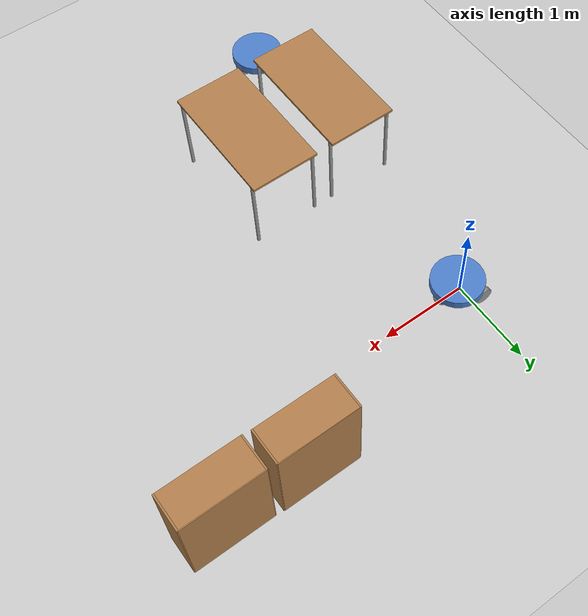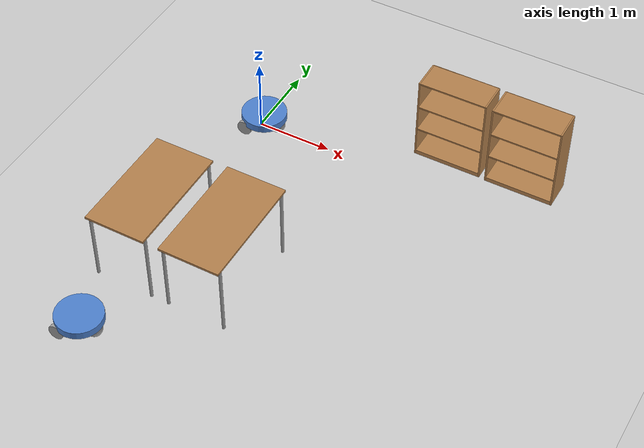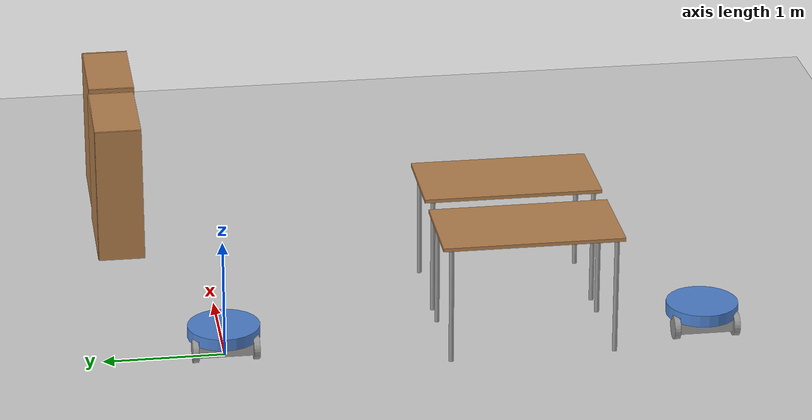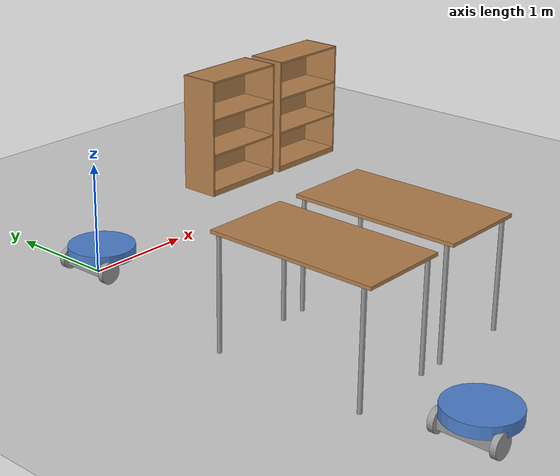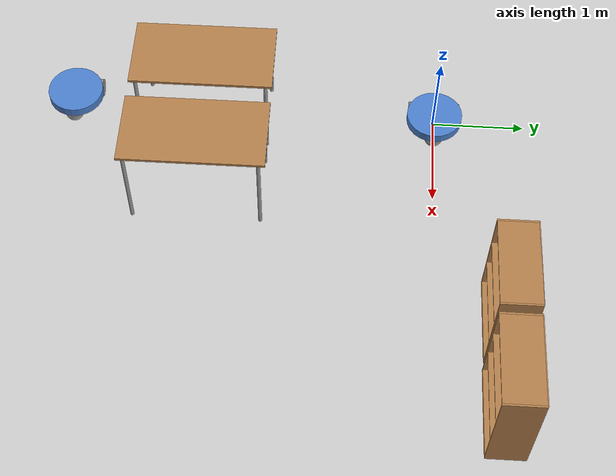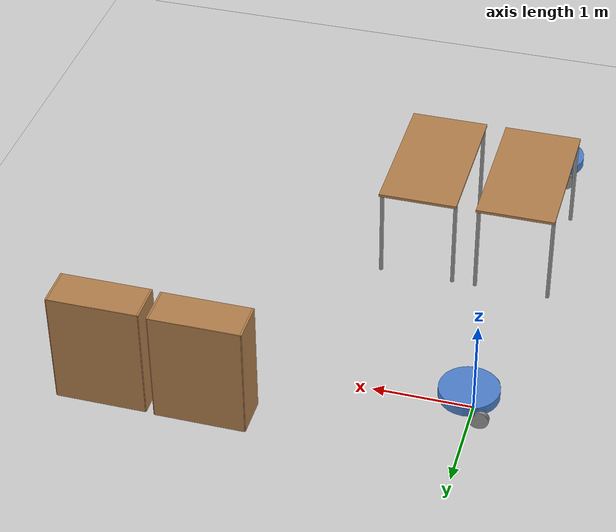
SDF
<sdf version="1.6">
 <world name="default">
  <model name="ground_plane">
   <static>1</static>
   <link name="link">
    <collision name="collision">
     <geometry><plane><normal>0 0 1</normal><size>100 100</size></plane></geometry>
     <surface>
      <contact><collide_bitmask>65535</collide_bitmask></contact>
      <friction><ode><mu>100</mu><mu2>50</mu2></ode></friction>
     </surface>
    </collision>
    <visual name="visual">
     <cast_shadows>0</cast_shadows>
     <geometry><plane><normal>0 0 1</normal><size>100 100</size></plane></geometry>
     <material>
      <script><uri>file://media/materials/scripts/gazebo.material</uri><name>Gazebo/Grey</name></script>
     </material>
    </visual>
   </link>
  </model>
  <model name="table_clone_0">
   <static>1</static>
   <link name="link">
    <collision name="surface">
     <pose>0 0 1 0 -0 0</pose>
     <geometry><box><size>1.5 0.8 0.03</size></box></geometry>
     <surface><friction><ode><mu>0.6</mu><mu2>0.6</mu2></ode></friction></surface>
    </collision>
    <visual name="visual1">
     <pose>0 0 1 0 -0 0</pose>
     <geometry><box><size>1.5 0.8 0.03</size></box></geometry>
     <material>
      <script><uri>file://media/materials/scripts/gazebo.material</uri><name>Gazebo/Wood</name></script>
     </material>
    </visual>
    <collision name="front_left_leg">
     <pose>0.68 0.38 0.5 0 -0 0</pose>
     <geometry><cylinder><radius>0.02</radius><length>1</length></cylinder></geometry>
    </collision>
    <visual name="front_left_leg">
     <pose>0.68 0.38 0.5 0 -0 0</pose>
     <geometry><cylinder><radius>0.02</radius><length>1</length></cylinder></geometry>
     <material>
      <script><uri>file://media/materials/scripts/gazebo.material</uri><name>Gazebo/Grey</name></script>
     </material>
    </visual>
    <collision name="front_right_leg">
     <pose>0.68 -0.38 0.5 0 -0 0</pose>
     <geometry><cylinder><radius>0.02</radius><length>1</length></cylinder></geometry>
    </collision>
    <visual name="front_right_leg">
     <pose>0.68 -0.38 0.5 0 -0 0</pose>
     <geometry><cylinder><radius>0.02</radius><length>1</length></cylinder></geometry>
     <material>
      <script><uri>file://media/materials/scripts/gazebo.material</uri><name>Gazebo/Grey</name></script>
     </material>
    </visual>
    <collision name="back_right_leg">
     <pose>-0.68 -0.38 0.5 0 -0 0</pose>
     <geometry><cylinder><radius>0.02</radius><length>1</length></cylinder></geometry>
    </collision>
    <visual name="back_right_leg">
     <pose>-0.68 -0.38 0.5 0 -0 0</pose>
     <geometry><cylinder><radius>0.02</radius><length>1</length></cylinder></geometry>
     <material>
      <script><uri>file://media/materials/scripts/gazebo.material</uri><name>Gazebo/Grey</name></script>
     </material>
    </visual>
    <collision name="back_left_leg">
     <pose>-0.68 0.38 0.5 0 -0 0</pose>
     <geometry><cylinder><radius>0.02</radius><length>1</length></cylinder></geometry>
    </collision>
    <visual name="back_left_leg">
     <pose>-0.68 0.38 0.5 0 -0 0</pose>
     <geometry><cylinder><radius>0.02</radius><length>1</length></cylinder></geometry>
     <material>
      <script><uri>file://media/materials/scripts/gazebo.material</uri><name>Gazebo/Grey</name></script>
     </material>
    </visual>
   </link>
   <pose>0 -2.5 0 0 -0 1.5708</pose>
  </model>
  <model name="table_clone_1">
   <static>1</static>
   <link name="link">
    <collision name="surface">
     <pose>0 0 1 0 -0 0</pose>
     <geometry><box><size>1.5 0.8 0.03</size></box></geometry>
     <surface><friction><ode><mu>0.6</mu><mu2>0.6</mu2></ode></friction></surface>
    </collision>
    <visual name="visual1">
     <pose>0 0 1 0 -0 0</pose>
     <geometry><box><size>1.5 0.8 0.03</size></box></geometry>
     <material>
      <script><uri>file://media/materials/scripts/gazebo.material</uri><name>Gazebo/Wood</name></script>
     </material>
    </visual>
    <collision name="front_left_leg">
     <pose>0.68 0.38 0.5 0 -0 0</pose>
     <geometry><cylinder><radius>0.02</radius><length>1</length></cylinder></geometry>
    </collision>
    <visual name="front_left_leg">
     <pose>0.68 0.38 0.5 0 -0 0</pose>
     <geometry><cylinder><radius>0.02</radius><length>1</length></cylinder></geometry>
     <material>
      <script><uri>file://media/materials/scripts/gazebo.material</uri><name>Gazebo/Grey</name></script>
     </material>
    </visual>
    <collision name="front_right_leg">
     <pose>0.68 -0.38 0.5 0 -0 0</pose>
     <geometry><cylinder><radius>0.02</radius><length>1</length></cylinder></geometry>
    </collision>
    <visual name="front_right_leg">
     <pose>0.68 -0.38 0.5 0 -0 0</pose>
     <geometry><cylinder><radius>0.02</radius><length>1</length></cylinder></geometry>
     <material>
      <script><uri>file://media/materials/scripts/gazebo.material</uri><name>Gazebo/Grey</name></script>
     </material>
    </visual>
    <collision name="back_right_leg">
     <pose>-0.68 -0.38 0.5 0 -0 0</pose>
     <geometry><cylinder><radius>0.02</radius><length>1</length></cylinder></geometry>
    </collision>
    <visual name="back_right_leg">
     <pose>-0.68 -0.38 0.5 0 -0 0</pose>
     <geometry><cylinder><radius>0.02</radius><length>1</length></cylinder></geometry>
     <material>
      <script><uri>file://media/materials/scripts/gazebo.material</uri><name>Gazebo/Grey</name></script>
     </material>
    </visual>
    <collision name="back_left_leg">
     <pose>-0.68 0.38 0.5 0 -0 0</pose>
     <geometry><cylinder><radius>0.02</radius><length>1</length></cylinder></geometry>
    </collision>
    <visual name="back_left_leg">
     <pose>-0.68 0.38 0.5 0 -0 0</pose>
     <geometry><cylinder><radius>0.02</radius><length>1</length></cylinder></geometry>
     <material>
      <script><uri>file://media/materials/scripts/gazebo.material</uri><name>Gazebo/Grey</name></script>
     </material>
    </visual>
   </link>
   <pose>1 -2.5 0 0 -0 1.5708</pose>
  </model>
  <model name="bookshelf">
   <static>1</static>
   <link name="link">
    <inertial><mass>1</mass></inertial>
    <collision name="back">
     <pose>0 0.005 0.6 0 -0 0</pose>
     <geometry><box><size>0.9 0.01 1.2</size></box></geometry>
    </collision>
    <visual name="visual1">
     <pose>0 0.005 0.6 0 -0 0</pose>
     <geometry><box><size>0.9 0.01 1.2</size></box></geometry>
     <material>
      <script><uri>file://media/materials/scripts/gazebo.material</uri><name>Gazebo/Wood</name></script>
     </material>
    </visual>
    <collision name="left_side">
     <pose>0.45 -0.195 0.6 0 -0 0</pose>
     <geometry><box><size>0.02 0.4 1.2</size></box></geometry>
    </collision>
    <visual name="visual2">
     <pose>0.45 -0.195 0.6 0 -0 0</pose>
     <geometry><box><size>0.02 0.4 1.2</size></box></geometry>
     <material>
      <script><uri>file://media/materials/scripts/gazebo.material</uri><name>Gazebo/Wood</name></script>
     </material>
    </visual>
    <collision name="right_side">
     <pose>-0.45 -0.195 0.6 0 -0 0</pose>
     <geometry><box><size>0.02 0.4 1.2</size></box></geometry>
    </collision>
    <visual name="visual3">
     <pose>-0.45 -0.195 0.6 0 -0 0</pose>
     <geometry><box><size>0.02 0.4 1.2</size></box></geometry>
     <material>
      <script><uri>file://media/materials/scripts/gazebo.material</uri><name>Gazebo/Wood</name></script>
     </material>
    </visual>
    <collision name="bottom">
     <pose>0 -0.195 0.03 0 -0 0</pose>
     <geometry><box><size>0.88 0.4 0.06</size></box></geometry>
    </collision>
    <visual name="visual4">
     <pose>0 -0.195 0.03 0 -0 0</pose>
     <geometry><box><size>0.88 0.4 0.06</size></box></geometry>
     <material>
      <script><uri>file://media/materials/scripts/gazebo.material</uri><name>Gazebo/Wood</name></script>
     </material>
    </visual>
    <collision name="top">
     <pose>0 -0.195 1.19 0 -0 0</pose>
     <geometry><box><size>0.88 0.4 0.02</size></box></geometry>
    </collision>
    <visual name="visual5">
     <pose>0 -0.195 1.19 0 -0 0</pose>
     <geometry><box><size>0.88 0.4 0.02</size></box></geometry>
     <material>
      <script><uri>file://media/materials/scripts/gazebo.material</uri><name>Gazebo/Wood</name></script>
     </material>
    </visual>
    <collision name="low_shelf">
     <pose>0 -0.195 0.43 0 -0 0</pose>
     <geometry><box><size>0.88 0.4 0.02</size></box></geometry>
    </collision>
    <visual name="visual6">
     <pose>0 -0.195 0.43 0 -0 0</pose>
     <geometry><box><size>0.88 0.4 0.02</size></box></geometry>
     <material>
      <script><uri>file://media/materials/scripts/gazebo.material</uri><name>Gazebo/Wood</name></script>
     </material>
    </visual>
    <collision name="high_shelf">
     <pose>0 -0.195 0.8 0 -0 0</pose>
     <geometry><box><size>0.88 0.4 0.02</size></box></geometry>
    </collision>
    <visual name="visual7">
     <pose>0 -0.195 0.8 0 -0 0</pose>
     <geometry><box><size>0.88 0.4 0.02</size></box></geometry>
     <material>
      <script><uri>file://media/materials/scripts/gazebo.material</uri><name>Gazebo/Wood</name></script>
     </material>
    </visual>
   </link>
   <pose>2.46771 0.891724 0 0 -0 0</pose>
  </model>
  <model name="bookshelf_0">
   <static>1</static>
   <link name="link">
    <inertial><mass>1</mass></inertial>
    <collision name="back">
     <pose>0 0.005 0.6 0 -0 0</pose>
     <geometry><box><size>0.9 0.01 1.2</size></box></geometry>
    </collision>
    <visual name="visual1">
     <pose>0 0.005 0.6 0 -0 0</pose>
     <geometry><box><size>0.9 0.01 1.2</size></box></geometry>
     <material>
      <script><uri>file://media/materials/scripts/gazebo.material</uri><name>Gazebo/Wood</name></script>
     </material>
    </visual>
    <collision name="left_side">
     <pose>0.45 -0.195 0.6 0 -0 0</pose>
     <geometry><box><size>0.02 0.4 1.2</size></box></geometry>
    </collision>
    <visual name="visual2">
     <pose>0.45 -0.195 0.6 0 -0 0</pose>
     <geometry><box><size>0.02 0.4 1.2</size></box></geometry>
     <material>
      <script><uri>file://media/materials/scripts/gazebo.material</uri><name>Gazebo/Wood</name></script>
     </material>
    </visual>
    <collision name="right_side">
     <pose>-0.45 -0.195 0.6 0 -0 0</pose>
     <geometry><box><size>0.02 0.4 1.2</size></box></geometry>
    </collision>
    <visual name="visual3">
     <pose>-0.45 -0.195 0.6 0 -0 0</pose>
     <geometry><box><size>0.02 0.4 1.2</size></box></geometry>
     <material>
      <script><uri>file://media/materials/scripts/gazebo.material</uri><name>Gazebo/Wood</name></script>
     </material>
    </visual>
    <collision name="bottom">
     <pose>0 -0.195 0.03 0 -0 0</pose>
     <geometry><box><size>0.88 0.4 0.06</size></box></geometry>
    </collision>
    <visual name="visual4">
     <pose>0 -0.195 0.03 0 -0 0</pose>
     <geometry><box><size>0.88 0.4 0.06</size></box></geometry>
     <material>
      <script><uri>file://media/materials/scripts/gazebo.material</uri><name>Gazebo/Wood</name></script>
     </material>
    </visual>
    <collision name="top">
     <pose>0 -0.195 1.19 0 -0 0</pose>
     <geometry><box><size>0.88 0.4 0.02</size></box></geometry>
    </collision>
    <visual name="visual5">
     <pose>0 -0.195 1.19 0 -0 0</pose>
     <geometry><box><size>0.88 0.4 0.02</size></box></geometry>
     <material>
      <script><uri>file://media/materials/scripts/gazebo.material</uri><name>Gazebo/Wood</name></script>
     </material>
    </visual>
    <collision name="low_shelf">
     <pose>0 -0.195 0.43 0 -0 0</pose>
     <geometry><box><size>0.88 0.4 0.02</size></box></geometry>
    </collision>
    <visual name="visual6">
     <pose>0 -0.195 0.43 0 -0 0</pose>
     <geometry><box><size>0.88 0.4 0.02</size></box></geometry>
     <material>
      <script><uri>file://media/materials/scripts/gazebo.material</uri><name>Gazebo/Wood</name></script>
     </material>
    </visual>
    <collision name="high_shelf">
     <pose>0 -0.195 0.8 0 -0 0</pose>
     <geometry><box><size>0.88 0.4 0.02</size></box></geometry>
    </collision>
    <visual name="visual7">
     <pose>0 -0.195 0.8 0 -0 0</pose>
     <geometry><box><size>0.88 0.4 0.02</size></box></geometry>
     <material>
      <script><uri>file://media/materials/scripts/gazebo.material</uri><name>Gazebo/Wood</name></script>
     </material>
    </visual>
   </link>
   <pose>3.46627 0.878561 0 0 -0 0</pose>
  </model>
  <model name="robot">
   <link name="link_0_clone">
    <inertial>
     <mass>1</mass>
     <inertia><ixx>0.145833</ixx><ixy>0</ixy><ixz>0</ixz><iyy>0.145833</iyy><iyz>0</iyz><izz>0.125</izz></inertia>
    </inertial>
    <pose>-0.1 0.25 -0.025 1.5708 -0 0</pose>
    <visual name="visual">
     <geometry><cylinder><radius>0.1</radius><length>0.05</length></cylinder></geometry>
     <material>
      <lighting>1</lighting>
      <script><uri>file://media/materials/scripts/gazebo.material</uri><name>Gazebo/Grey</name></script>
      <shader type="vertex"><normal_map>__default__</normal_map></shader>
      <ambient>0.3 0.3 0.3 1</ambient>
      <diffuse>0.7 0.7 0.7 1</diffuse>
      <specular>0.01 0.01 0.01 1</specular>
      <emissive>0 0 0 1</emissive>
     </material>
    </visual>
    <collision name="collision">
     <geometry><cylinder><radius>0.1</radius><length>0.05</length></cylinder></geometry>
     <surface>
      <friction>
       <ode><mu>1</mu><mu2>1</mu2><fdir1>0 0 0</fdir1><slip1>0</slip1><slip2>0</slip2></ode>
       <torsional>
        <coefficient>1</coefficient>
        <patch_radius>0</patch_radius>
        <surface_radius>0</surface_radius>
        <use_patch_radius>1</use_patch_radius>
        <ode><slip>0</slip></ode>
       </torsional>
      </friction>
      <bounce><restitution_coefficient>0</restitution_coefficient><threshold>1e+06</threshold></bounce>
      <contact>
       <collide_without_contact>0</collide_without_contact>
       <collide_without_contact_bitmask>1</collide_without_contact_bitmask>
       <collide_bitmask>1</collide_bitmask>
       <ode>
        <soft_cfm>0</soft_cfm>
        <soft_erp>0.2</soft_erp>
        <kp>1e+13</kp>
        <kd>1</kd>
        <max_vel>0.01</max_vel>
        <min_depth>0</min_depth>
       </ode>
       <bullet>
        <split_impulse>1</split_impulse>
        <split_impulse_penetration_threshold>-0.01</split_impulse_penetration_threshold>
        <soft_cfm>0</soft_cfm>
        <soft_erp>0.2</soft_erp>
        <kp>1e+13</kp>
        <kd>1</kd>
       </bullet>
      </contact>
     </surface>
    </collision>
   </link>
   <link name="link_0_clone_clone">
    <inertial>
     <mass>1</mass>
     <inertia><ixx>0.145833</ixx><ixy>0</ixy><ixz>0</ixz><iyy>0.145833</iyy><iyz>0</iyz><izz>0.125</izz></inertia>
    </inertial>
    <pose>-0.1 -0.25 -0.025 1.5708 -0 0</pose>
    <visual name="visual">
     <geometry><cylinder><radius>0.1</radius><length>0.05</length></cylinder></geometry>
     <material>
      <lighting>1</lighting>
      <script><uri>file://media/materials/scripts/gazebo.material</uri><name>Gazebo/Grey</name></script>
      <shader type="vertex"><normal_map>__default__</normal_map></shader>
      <ambient>0.3 0.3 0.3 1</ambient>
      <diffuse>0.7 0.7 0.7 1</diffuse>
      <specular>0.01 0.01 0.01 1</specular>
      <emissive>0 0 0 1</emissive>
     </material>
    </visual>
    <collision name="collision">
     <geometry><cylinder><radius>0.1</radius><length>0.05</length></cylinder></geometry>
     <surface>
      <friction>
       <ode><mu>1</mu><mu2>1</mu2><fdir1>0 0 0</fdir1><slip1>0</slip1><slip2>0</slip2></ode>
       <torsional>
        <coefficient>1</coefficient>
        <patch_radius>0</patch_radius>
        <surface_radius>0</surface_radius>
        <use_patch_radius>1</use_patch_radius>
        <ode><slip>0</slip></ode>
       </torsional>
      </friction>
      <bounce><restitution_coefficient>0</restitution_coefficient><threshold>1e+06</threshold></bounce>
      <contact>
       <collide_without_contact>0</collide_without_contact>
       <collide_without_contact_bitmask>1</collide_without_contact_bitmask>
       <collide_bitmask>1</collide_bitmask>
       <ode>
        <soft_cfm>0</soft_cfm>
        <soft_erp>0.2</soft_erp>
        <kp>1e+13</kp>
        <kd>1</kd>
        <max_vel>0.01</max_vel>
        <min_depth>0</min_depth>
       </ode>
       <bullet>
        <split_impulse>1</split_impulse>
        <split_impulse_penetration_threshold>-0.01</split_impulse_penetration_threshold>
        <soft_cfm>0</soft_cfm>
        <soft_erp>0.2</soft_erp>
        <kp>1e+13</kp>
        <kd>1</kd>
       </bullet>
      </contact>
     </surface>
    </collision>
   </link>
   <link name="link_3">
    <inertial>
     <mass>1</mass>
     <inertia><ixx>0.145833</ixx><ixy>0</ixy><ixz>0</ixz><iyy>0.145833</iyy><iyz>0</iyz><izz>0.125</izz></inertia>
    </inertial>
    <pose>0.05 -0 0.075 0 -0 0</pose>
    <visual name="visual">
     <geometry><cylinder><radius>0.3</radius><length>0.1</length></cylinder></geometry>
     <material>
      <lighting>1</lighting>
      <script><uri>file://media/materials/scripts/gazebo.material</uri><name>Gazebo/Grey</name></script>
      <shader type="vertex"><normal_map>__default__</normal_map></shader>
      <ambient>0.3 0.5 0.8 1</ambient>
      <diffuse>0.7 0.7 0.7 1</diffuse>
      <specular>0.01 0.01 0.01 1</specular>
      <emissive>0 0 0 1</emissive>
     </material>
    </visual>
    <collision name="collision">
     <geometry><cylinder><radius>0.3</radius><length>0.1</length></cylinder></geometry>
     <surface>
      <friction>
       <ode><mu>1</mu><mu2>1</mu2><fdir1>0 0 0</fdir1><slip1>0</slip1><slip2>0</slip2></ode>
       <torsional>
        <coefficient>1</coefficient>
        <patch_radius>0</patch_radius>
        <surface_radius>0</surface_radius>
        <use_patch_radius>1</use_patch_radius>
        <ode><slip>0</slip></ode>
       </torsional>
      </friction>
      <bounce><restitution_coefficient>0</restitution_coefficient><threshold>1e+06</threshold></bounce>
      <contact>
       <collide_without_contact>0</collide_without_contact>
       <collide_without_contact_bitmask>1</collide_without_contact_bitmask>
       <collide_bitmask>1</collide_bitmask>
       <ode>
        <soft_cfm>0</soft_cfm>
        <soft_erp>0.2</soft_erp>
        <kp>1e+13</kp>
        <kd>1</kd>
        <max_vel>0.01</max_vel>
        <min_depth>0</min_depth>
       </ode>
       <bullet>
        <split_impulse>1</split_impulse>
        <split_impulse_penetration_threshold>-0.01</split_impulse_penetration_threshold>
        <soft_cfm>0</soft_cfm>
        <soft_erp>0.2</soft_erp>
        <kp>1e+13</kp>
        <kd>1</kd>
       </bullet>
      </contact>
     </surface>
    </collision>
   </link>
   <link name="link_4">
    <inertial>
     <mass>1</mass>
     <inertia>
      <ixx>0.166667</ixx>
      <ixy>0</ixy>
      <ixz>0</ixz>
      <iyy>0.166667</iyy>
      <iyz>0</iyz>
      <izz>0.166667</izz>
     </inertia>
    </inertial>
    <pose>-0.1 0 0 0 -0 0</pose>
    <visual name="visual">
     <geometry><box><size>0.1 0.45 0.15</size></box></geometry>
     <material>
      <lighting>1</lighting>
      <script><uri>file://media/materials/scripts/gazebo.material</uri><name>Gazebo/Grey</name></script>
      <shader type="vertex"><normal_map>__default__</normal_map></shader>
      <ambient>0.3 0.3 0.3 1</ambient>
      <diffuse>0.7 0.7 0.7 1</diffuse>
      <specular>0.01 0.01 0.01 1</specular>
      <emissive>0 0 0 1</emissive>
     </material>
    </visual>
    <collision name="collision">
     <geometry><box><size>0.1 0.45 0.15</size></box></geometry>
     <surface>
      <friction>
       <ode><mu>1</mu><mu2>1</mu2><fdir1>0 0 0</fdir1><slip1>0</slip1><slip2>0</slip2></ode>
       <torsional>
        <coefficient>1</coefficient>
        <patch_radius>0</patch_radius>
        <surface_radius>0</surface_radius>
        <use_patch_radius>1</use_patch_radius>
        <ode><slip>0</slip></ode>
       </torsional>
      </friction>
      <bounce><restitution_coefficient>0</restitution_coefficient><threshold>1e+06</threshold></bounce>
      <contact>
       <collide_without_contact>0</collide_without_contact>
       <collide_without_contact_bitmask>1</collide_without_contact_bitmask>
       <collide_bitmask>1</collide_bitmask>
       <ode>
        <soft_cfm>0</soft_cfm>
        <soft_erp>0.2</soft_erp>
        <kp>1e+13</kp>
        <kd>1</kd>
        <max_vel>0.01</max_vel>
        <min_depth>0</min_depth>
       </ode>
       <bullet>
        <split_impulse>1</split_impulse>
        <split_impulse_penetration_threshold>-0.01</split_impulse_penetration_threshold>
        <soft_cfm>0</soft_cfm>
        <soft_erp>0.2</soft_erp>
        <kp>1e+13</kp>
        <kd>1</kd>
       </bullet>
      </contact>
     </surface>
    </collision>
   </link>
   <link name="link_5">
    <inertial>
     <mass>1</mass>
     <inertia><ixx>0.1</ixx><ixy>0</ixy><ixz>0</ixz><iyy>0.1</iyy><iyz>0</iyz><izz>0.1</izz></inertia>
    </inertial>
    <pose>0.25 -0 -0.025 0 -0 0</pose>
    <visual name="visual">
     <geometry><sphere><radius>0.1</radius></sphere></geometry>
     <material>
      <lighting>1</lighting>
      <script><uri>file://media/materials/scripts/gazebo.material</uri><name>Gazebo/Grey</name></script>
      <shader type="vertex"><normal_map>__default__</normal_map></shader>
      <ambient>0.3 0.3 0.3 1</ambient>
      <diffuse>0.7 0.7 0.7 1</diffuse>
      <specular>0.01 0.01 0.01 1</specular>
      <emissive>0 0 0 1</emissive>
     </material>
    </visual>
    <collision name="collision">
     <geometry><sphere><radius>0.1</radius></sphere></geometry>
     <surface>
      <friction>
       <ode><mu>1</mu><mu2>1</mu2><fdir1>0 0 0</fdir1><slip1>0</slip1><slip2>0</slip2></ode>
       <torsional>
        <coefficient>1</coefficient>
        <patch_radius>0</patch_radius>
        <surface_radius>0</surface_radius>
        <use_patch_radius>1</use_patch_radius>
        <ode><slip>0</slip></ode>
       </torsional>
      </friction>
      <bounce><restitution_coefficient>0</restitution_coefficient><threshold>1e+06</threshold></bounce>
      <contact>
       <collide_without_contact>0</collide_without_contact>
       <collide_without_contact_bitmask>1</collide_without_contact_bitmask>
       <collide_bitmask>1</collide_bitmask>
       <ode>
        <soft_cfm>0</soft_cfm>
        <soft_erp>0.2</soft_erp>
        <kp>1e+13</kp>
        <kd>1</kd>
        <max_vel>0.01</max_vel>
        <min_depth>0</min_depth>
       </ode>
       <bullet>
        <split_impulse>1</split_impulse>
        <split_impulse_penetration_threshold>-0.01</split_impulse_penetration_threshold>
        <soft_cfm>0</soft_cfm>
        <soft_erp>0.2</soft_erp>
        <kp>1e+13</kp>
        <kd>1</kd>
       </bullet>
      </contact>
     </surface>
    </collision>
   </link>
   <joint name="link_4_JOINT_4" type="revolute">
    <parent>link_4</parent>
    <child>link_0_clone</child>
    <axis>
     <xyz>0 0 1</xyz>
     <use_parent_model_frame>0</use_parent_model_frame>
     <limit>
      <lower>-1.79769e+308</lower>
      <upper>1.79769e+308</upper>
      <effort>-1</effort>
      <velocity>-1</velocity>
     </limit>
     <dynamics>
      <spring_reference>0</spring_reference>
      <spring_stiffness>0</spring_stiffness>
      <damping>0</damping>
      <friction>0</friction>
     </dynamics>
    </axis>
    <physics>
     <ode><limit><cfm>0</cfm><erp>0.2</erp></limit><suspension><cfm>0</cfm><erp>0.2</erp></suspension></ode>
    </physics>
   </joint>
   <joint name="link_4_JOINT_5" type="revolute">
    <parent>link_4</parent>
    <child>link_0_clone_clone</child>
    <axis>
     <xyz>0 0 1</xyz>
     <use_parent_model_frame>0</use_parent_model_frame>
     <limit>
      <lower>-1.79769e+308</lower>
      <upper>1.79769e+308</upper>
      <effort>-1</effort>
      <velocity>-1</velocity>
     </limit>
     <dynamics>
      <spring_reference>0</spring_reference>
      <spring_stiffness>0</spring_stiffness>
      <damping>0</damping>
      <friction>0</friction>
     </dynamics>
    </axis>
    <physics>
     <ode><limit><cfm>0</cfm><erp>0.2</erp></limit><suspension><cfm>0</cfm><erp>0.2</erp></suspension></ode>
    </physics>
   </joint>
   <joint name="link_4_JOINT_6" type="ball">
    <parent>link_4</parent>
    <child>link_5</child>
    <physics>
     <ode><limit><cfm>0</cfm><erp>0.2</erp></limit><suspension><cfm>0</cfm><erp>0.2</erp></suspension></ode>
    </physics>
   </joint>
   <static>0</static>
   <pose>0.000287 3.7e-05 0.124688 -1e-06 0.003065 -0.00038</pose>
  </model>
  <model name="robot_clone">
   <link name="link_0_clone">
    <inertial>
     <mass>1</mass>
     <inertia><ixx>0.145833</ixx><ixy>0</ixy><ixz>0</ixz><iyy>0.145833</iyy><iyz>0</iyz><izz>0.125</izz></inertia>
    </inertial>
    <pose>-0.1 0.25 -0.025 1.5708 -0 0</pose>
    <visual name="visual">
     <geometry><cylinder><radius>0.1</radius><length>0.05</length></cylinder></geometry>
     <material>
      <lighting>1</lighting>
      <script><uri>file://media/materials/scripts/gazebo.material</uri><name>Gazebo/Grey</name></script>
      <shader type="vertex"><normal_map>__default__</normal_map></shader>
      <ambient>0.3 0.3 0.3 1</ambient>
      <diffuse>0.7 0.7 0.7 1</diffuse>
      <specular>0.01 0.01 0.01 1</specular>
      <emissive>0 0 0 1</emissive>
     </material>
    </visual>
    <collision name="collision">
     <geometry><cylinder><radius>0.1</radius><length>0.05</length></cylinder></geometry>
     <surface>
      <friction>
       <ode><mu>1</mu><mu2>1</mu2><fdir1>0 0 0</fdir1><slip1>0</slip1><slip2>0</slip2></ode>
       <torsional>
        <coefficient>1</coefficient>
        <patch_radius>0</patch_radius>
        <surface_radius>0</surface_radius>
        <use_patch_radius>1</use_patch_radius>
        <ode><slip>0</slip></ode>
       </torsional>
      </friction>
      <bounce><restitution_coefficient>0</restitution_coefficient><threshold>1e+06</threshold></bounce>
      <contact>
       <collide_without_contact>0</collide_without_contact>
       <collide_without_contact_bitmask>1</collide_without_contact_bitmask>
       <collide_bitmask>1</collide_bitmask>
       <ode>
        <soft_cfm>0</soft_cfm>
        <soft_erp>0.2</soft_erp>
        <kp>1e+13</kp>
        <kd>1</kd>
        <max_vel>0.01</max_vel>
        <min_depth>0</min_depth>
       </ode>
       <bullet>
        <split_impulse>1</split_impulse>
        <split_impulse_penetration_threshold>-0.01</split_impulse_penetration_threshold>
        <soft_cfm>0</soft_cfm>
        <soft_erp>0.2</soft_erp>
        <kp>1e+13</kp>
        <kd>1</kd>
       </bullet>
      </contact>
     </surface>
    </collision>
   </link>
   <link name="link_0_clone_clone">
    <inertial>
     <mass>1</mass>
     <inertia><ixx>0.145833</ixx><ixy>0</ixy><ixz>0</ixz><iyy>0.145833</iyy><iyz>0</iyz><izz>0.125</izz></inertia>
    </inertial>
    <pose>-0.1 -0.25 -0.025 1.5708 -0 0</pose>
    <visual name="visual">
     <geometry><cylinder><radius>0.1</radius><length>0.05</length></cylinder></geometry>
     <material>
      <lighting>1</lighting>
      <script><uri>file://media/materials/scripts/gazebo.material</uri><name>Gazebo/Grey</name></script>
      <shader type="vertex"><normal_map>__default__</normal_map></shader>
      <ambient>0.3 0.3 0.3 1</ambient>
      <diffuse>0.7 0.7 0.7 1</diffuse>
      <specular>0.01 0.01 0.01 1</specular>
      <emissive>0 0 0 1</emissive>
     </material>
    </visual>
    <collision name="collision">
     <geometry><cylinder><radius>0.1</radius><length>0.05</length></cylinder></geometry>
     <surface>
      <friction>
       <ode><mu>1</mu><mu2>1</mu2><fdir1>0 0 0</fdir1><slip1>0</slip1><slip2>0</slip2></ode>
       <torsional>
        <coefficient>1</coefficient>
        <patch_radius>0</patch_radius>
        <surface_radius>0</surface_radius>
        <use_patch_radius>1</use_patch_radius>
        <ode><slip>0</slip></ode>
       </torsional>
      </friction>
      <bounce><restitution_coefficient>0</restitution_coefficient><threshold>1e+06</threshold></bounce>
      <contact>
       <collide_without_contact>0</collide_without_contact>
       <collide_without_contact_bitmask>1</collide_without_contact_bitmask>
       <collide_bitmask>1</collide_bitmask>
       <ode>
        <soft_cfm>0</soft_cfm>
        <soft_erp>0.2</soft_erp>
        <kp>1e+13</kp>
        <kd>1</kd>
        <max_vel>0.01</max_vel>
        <min_depth>0</min_depth>
       </ode>
       <bullet>
        <split_impulse>1</split_impulse>
        <split_impulse_penetration_threshold>-0.01</split_impulse_penetration_threshold>
        <soft_cfm>0</soft_cfm>
        <soft_erp>0.2</soft_erp>
        <kp>1e+13</kp>
        <kd>1</kd>
       </bullet>
      </contact>
     </surface>
    </collision>
   </link>
   <link name="link_3">
    <inertial>
     <mass>1</mass>
     <inertia><ixx>0.145833</ixx><ixy>0</ixy><ixz>0</ixz><iyy>0.145833</iyy><iyz>0</iyz><izz>0.125</izz></inertia>
    </inertial>
    <pose>0.05 -0 0.075 0 -0 0</pose>
    <visual name="visual">
     <geometry><cylinder><radius>0.3</radius><length>0.1</length></cylinder></geometry>
     <material>
      <lighting>1</lighting>
      <script><uri>file://media/materials/scripts/gazebo.material</uri><name>Gazebo/Grey</name></script>
      <shader type="vertex"><normal_map>__default__</normal_map></shader>
      <ambient>0.3 0.5 0.8 1</ambient>
      <diffuse>0.7 0.7 0.7 1</diffuse>
      <specular>0.01 0.01 0.01 1</specular>
      <emissive>0 0 0 1</emissive>
     </material>
    </visual>
    <collision name="collision">
     <geometry><cylinder><radius>0.3</radius><length>0.1</length></cylinder></geometry>
     <surface>
      <friction>
       <ode><mu>1</mu><mu2>1</mu2><fdir1>0 0 0</fdir1><slip1>0</slip1><slip2>0</slip2></ode>
       <torsional>
        <coefficient>1</coefficient>
        <patch_radius>0</patch_radius>
        <surface_radius>0</surface_radius>
        <use_patch_radius>1</use_patch_radius>
        <ode><slip>0</slip></ode>
       </torsional>
      </friction>
      <bounce><restitution_coefficient>0</restitution_coefficient><threshold>1e+06</threshold></bounce>
      <contact>
       <collide_without_contact>0</collide_without_contact>
       <collide_without_contact_bitmask>1</collide_without_contact_bitmask>
       <collide_bitmask>1</collide_bitmask>
       <ode>
        <soft_cfm>0</soft_cfm>
        <soft_erp>0.2</soft_erp>
        <kp>1e+13</kp>
        <kd>1</kd>
        <max_vel>0.01</max_vel>
        <min_depth>0</min_depth>
       </ode>
       <bullet>
        <split_impulse>1</split_impulse>
        <split_impulse_penetration_threshold>-0.01</split_impulse_penetration_threshold>
        <soft_cfm>0</soft_cfm>
        <soft_erp>0.2</soft_erp>
        <kp>1e+13</kp>
        <kd>1</kd>
       </bullet>
      </contact>
     </surface>
    </collision>
   </link>
   <link name="link_4">
    <inertial>
     <mass>1</mass>
     <inertia>
      <ixx>0.166667</ixx>
      <ixy>0</ixy>
      <ixz>0</ixz>
      <iyy>0.166667</iyy>
      <iyz>0</iyz>
      <izz>0.166667</izz>
     </inertia>
    </inertial>
    <pose>-0.1 0 0 0 -0 0</pose>
    <visual name="visual">
     <geometry><box><size>0.1 0.45 0.15</size></box></geometry>
     <material>
      <lighting>1</lighting>
      <script><uri>file://media/materials/scripts/gazebo.material</uri><name>Gazebo/Grey</name></script>
      <shader type="vertex"><normal_map>__default__</normal_map></shader>
      <ambient>0.3 0.3 0.3 1</ambient>
      <diffuse>0.7 0.7 0.7 1</diffuse>
      <specular>0.01 0.01 0.01 1</specular>
      <emissive>0 0 0 1</emissive>
     </material>
    </visual>
    <collision name="collision">
     <geometry><box><size>0.1 0.45 0.15</size></box></geometry>
     <surface>
      <friction>
       <ode><mu>1</mu><mu2>1</mu2><fdir1>0 0 0</fdir1><slip1>0</slip1><slip2>0</slip2></ode>
       <torsional>
        <coefficient>1</coefficient>
        <patch_radius>0</patch_radius>
        <surface_radius>0</surface_radius>
        <use_patch_radius>1</use_patch_radius>
        <ode><slip>0</slip></ode>
       </torsional>
      </friction>
      <bounce><restitution_coefficient>0</restitution_coefficient><threshold>1e+06</threshold></bounce>
      <contact>
       <collide_without_contact>0</collide_without_contact>
       <collide_without_contact_bitmask>1</collide_without_contact_bitmask>
       <collide_bitmask>1</collide_bitmask>
       <ode>
        <soft_cfm>0</soft_cfm>
        <soft_erp>0.2</soft_erp>
        <kp>1e+13</kp>
        <kd>1</kd>
        <max_vel>0.01</max_vel>
        <min_depth>0</min_depth>
       </ode>
       <bullet>
        <split_impulse>1</split_impulse>
        <split_impulse_penetration_threshold>-0.01</split_impulse_penetration_threshold>
        <soft_cfm>0</soft_cfm>
        <soft_erp>0.2</soft_erp>
        <kp>1e+13</kp>
        <kd>1</kd>
       </bullet>
      </contact>
     </surface>
    </collision>
   </link>
   <link name="link_5">
    <inertial>
     <mass>1</mass>
     <inertia><ixx>0.1</ixx><ixy>0</ixy><ixz>0</ixz><iyy>0.1</iyy><iyz>0</iyz><izz>0.1</izz></inertia>
    </inertial>
    <pose>0.25 -0 -0.025 0 -0 0</pose>
    <visual name="visual">
     <geometry><sphere><radius>0.1</radius></sphere></geometry>
     <material>
      <lighting>1</lighting>
      <script><uri>file://media/materials/scripts/gazebo.material</uri><name>Gazebo/Grey</name></script>
      <shader type="vertex"><normal_map>__default__</normal_map></shader>
      <ambient>0.3 0.3 0.3 1</ambient>
      <diffuse>0.7 0.7 0.7 1</diffuse>
      <specular>0.01 0.01 0.01 1</specular>
      <emissive>0 0 0 1</emissive>
     </material>
    </visual>
    <collision name="collision">
     <geometry><sphere><radius>0.1</radius></sphere></geometry>
     <surface>
      <friction>
       <ode><mu>1</mu><mu2>1</mu2><fdir1>0 0 0</fdir1><slip1>0</slip1><slip2>0</slip2></ode>
       <torsional>
        <coefficient>1</coefficient>
        <patch_radius>0</patch_radius>
        <surface_radius>0</surface_radius>
        <use_patch_radius>1</use_patch_radius>
        <ode><slip>0</slip></ode>
       </torsional>
      </friction>
      <bounce><restitution_coefficient>0</restitution_coefficient><threshold>1e+06</threshold></bounce>
      <contact>
       <collide_without_contact>0</collide_without_contact>
       <collide_without_contact_bitmask>1</collide_without_contact_bitmask>
       <collide_bitmask>1</collide_bitmask>
       <ode>
        <soft_cfm>0</soft_cfm>
        <soft_erp>0.2</soft_erp>
        <kp>1e+13</kp>
        <kd>1</kd>
        <max_vel>0.01</max_vel>
        <min_depth>0</min_depth>
       </ode>
       <bullet>
        <split_impulse>1</split_impulse>
        <split_impulse_penetration_threshold>-0.01</split_impulse_penetration_threshold>
        <soft_cfm>0</soft_cfm>
        <soft_erp>0.2</soft_erp>
        <kp>1e+13</kp>
        <kd>1</kd>
       </bullet>
      </contact>
     </surface>
    </collision>
   </link>
   <joint name="link_4_JOINT_4" type="revolute">
    <parent>link_4</parent>
    <child>link_0_clone</child>
    <axis>
     <xyz>0 0 1</xyz>
     <use_parent_model_frame>0</use_parent_model_frame>
     <limit>
      <lower>-1.79769e+308</lower>
      <upper>1.79769e+308</upper>
      <effort>-1</effort>
      <velocity>-1</velocity>
     </limit>
     <dynamics>
      <spring_reference>0</spring_reference>
      <spring_stiffness>0</spring_stiffness>
      <damping>0</damping>
      <friction>0</friction>
     </dynamics>
    </axis>
    <physics>
     <ode><limit><cfm>0</cfm><erp>0.2</erp></limit><suspension><cfm>0</cfm><erp>0.2</erp></suspension></ode>
    </physics>
   </joint>
   <joint name="link_4_JOINT_5" type="revolute">
    <parent>link_4</parent>
    <child>link_0_clone_clone</child>
    <axis>
     <xyz>0 0 1</xyz>
     <use_parent_model_frame>0</use_parent_model_frame>
     <limit>
      <lower>-1.79769e+308</lower>
      <upper>1.79769e+308</upper>
      <effort>-1</effort>
      <velocity>-1</velocity>
     </limit>
     <dynamics>
      <spring_reference>0</spring_reference>
      <spring_stiffness>0</spring_stiffness>
      <damping>0</damping>
      <friction>0</friction>
     </dynamics>
    </axis>
    <physics>
     <ode><limit><cfm>0</cfm><erp>0.2</erp></limit><suspension><cfm>0</cfm><erp>0.2</erp></suspension></ode>
    </physics>
   </joint>
   <joint name="link_4_JOINT_6" type="ball">
    <parent>link_4</parent>
    <child>link_5</child>
    <physics>
     <ode><limit><cfm>0</cfm><erp>0.2</erp></limit><suspension><cfm>0</cfm><erp>0.2</erp></suspension></ode>
    </physics>
   </joint>
   <static>0</static>
   <pose>-0.118504 -3.97828 0.124688 -1e-06 0.003065 -0.00038</pose>
  </model>
 </world>
</sdf>
